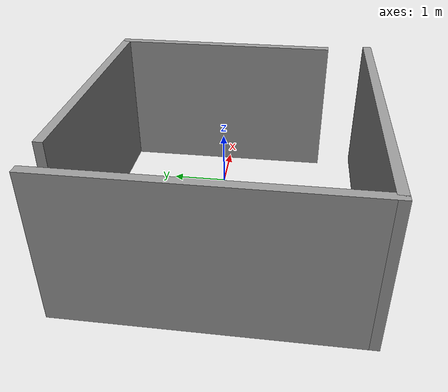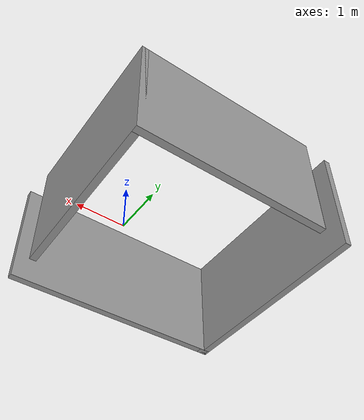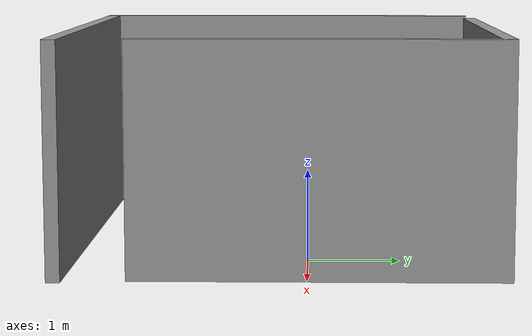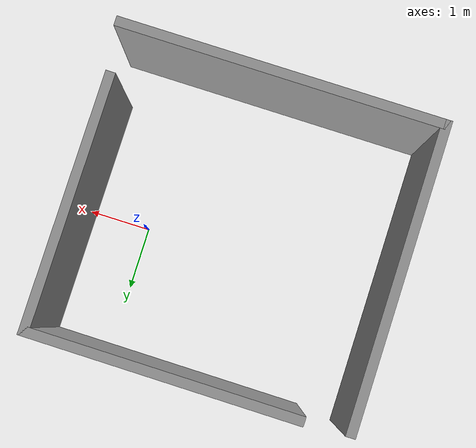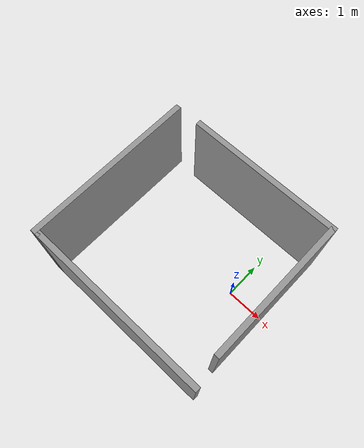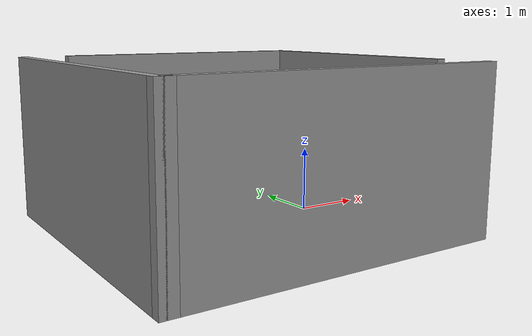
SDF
<?xml version='1.0'?>
<sdf version='1.6'>
  <model name='tunnel_wall'>
    <pose frame=''>-1.395 -0.28 0 0 -0 0</pose>
    <link name='Wall_37'>
      <collision name='Wall_37_Collision'>
        <geometry>
          <box>
            <size>5 0.15 2.5</size>
          </box>
        </geometry>
        <pose frame=''>0 0 1.25 0 -0 0</pose>
      </collision>
      <visual name='Wall_37_Visual'>
        <pose frame=''>0 0 1.25 0 -0 0</pose>
        <geometry>
          <box>
            <size>5 0.15 2.5</size>
          </box>
        </geometry>
        <material>
          <script>
            <uri>file://media/materials/scripts/gazebo.material</uri>
            <name>Gazebo/Grey</name>
          </script>
          <ambient>1 1 1 1</ambient>
        </material>
      </visual>
      <pose frame=''>0.05 -2.33 0 0 -0 3.14159</pose>
    </link>
    <link name='Wall_38'>
      <collision name='Wall_38_Collision'>
        <geometry>
          <box>
            <size>0.25 0.15 2.5</size>
          </box>
        </geometry>
        <pose frame=''>0 0 1.25 0 -0 0</pose>
      </collision>
      <visual name='Wall_38_Visual'>
        <pose frame=''>0 0 1.25 0 -0 0</pose>
        <geometry>
          <box>
            <size>0.25 0.15 2.5</size>
          </box>
        </geometry>
        <material>
          <script>
            <uri>file://media/materials/scripts/gazebo.material</uri>
            <name>Gazebo/Grey</name>
          </script>
          <ambient>1 1 1 1</ambient>
        </material>
      </visual>
      <pose frame=''>-2.425 -2.33 0 0 -0 3.14159</pose>
    </link>
    <link name='Wall_39'>
      <collision name='Wall_39_Collision'>
        <geometry>
          <box>
            <size>4.75 0.15 2.5</size>
          </box>
        </geometry>
        <pose frame=''>0 0 1.25 0 -0 0</pose>
      </collision>
      <visual name='Wall_39_Visual'>
        <pose frame=''>0 0 1.25 0 -0 0</pose>
        <geometry>
          <box>
            <size>4.75 0.15 2.5</size>
          </box>
        </geometry>
        <material>
          <script>
            <uri>file://media/materials/scripts/gazebo.material</uri>
            <name>Gazebo/Grey</name>
          </script>
          <ambient>1 1 1 1</ambient>
        </material>
      </visual>
      <pose frame=''>-2.475 -0.03 0 0 -0 1.5708</pose>
    </link>
    <link name='Wall_42'>
      <collision name='Wall_42_Collision'>
        <geometry>
          <box>
            <size>4.25 0.15 2.5</size>
          </box>
        </geometry>
        <pose frame=''>0 0 1.25 0 -0 0</pose>
      </collision>
      <visual name='Wall_42_Visual'>
        <pose frame=''>0 0 1.25 0 -0 0</pose>
        <geometry>
          <box>
            <size>4.25 0.15 2.5</size>
          </box>
        </geometry>
        <material>
          <script>
            <uri>file://media/materials/scripts/gazebo.material</uri>
            <name>Gazebo/Grey</name>
          </script>
          <ambient>1 1 1 1</ambient>
        </material>
      </visual>
      <pose frame=''>0.325 2.33 0 0 -0 0</pose>
    </link>
    <link name='Wall_43'>
      <collision name='Wall_43_Collision'>
        <geometry>
          <box>
            <size>4 0.15 2.5</size>
          </box>
        </geometry>
        <pose frame=''>0 0 1.25 0 -0 0</pose>
      </collision>
      <visual name='Wall_43_Visual'>
        <pose frame=''>0 0 1.25 0 -0 0</pose>
        <geometry>
          <box>
            <size>4 0.15 2.5</size>
          </box>
        </geometry>
        <material>
          <script>
            <uri>file://media/materials/scripts/gazebo.material</uri>
            <name>Gazebo/Grey</name>
          </script>
          <ambient>1 1 1 1</ambient>
        </material>
      </visual>
      <pose frame=''>2.375 0.405 0 0 0 -1.5708</pose>
    </link>
    <static>1</static>
  </model>
</sdf>
